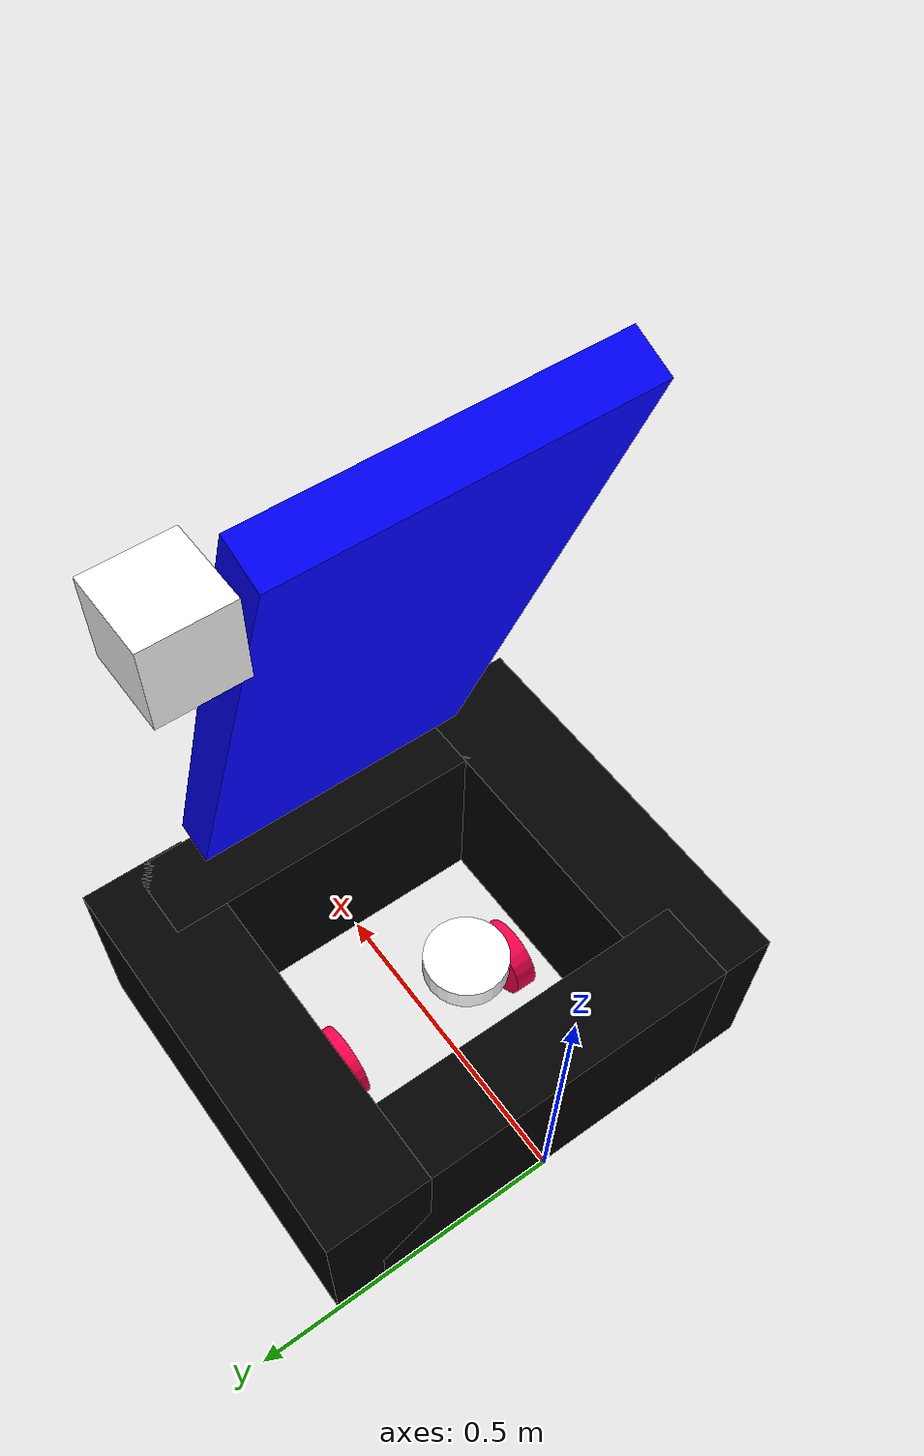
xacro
<?xml version="1.0"?>
<robot xmlns:xacro="http://www.ros.org/wiki/xacro"  name="Adrover">

    <xacro:arg name="use_ros2_control" default="true"/>

    <xacro:include filename="robot_core.xacro" />

    <xacro:if value="$(arg use_ros2_control)">
        <xacro:include filename="ros2_control.xacro" />
    </xacro:if>
    <xacro:unless value="$(arg use_ros2_control)">
        <xacro:include filename="gazebo_control.xacro" />
    </xacro:unless>

    <xacro:include filename="lidar.xacro" />
    <xacro:include filename="camera.xacro" />

</robot>

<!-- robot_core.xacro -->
<robot xmlns:xacro="http://www.ros.org/wiki/xacro" >

    <xacro:include filename="inertial_macros.xacro" />

    <material name="white">
        <color rgba="1.0 1.0 1.0 1.0"/>
    </material>

    <material name="black">
        <color rgba="0.0 0.0 0.0 1.0"/>
    </material>

    <material name="green">
        <color rgba="0.0 1.0 0.3 1.0"/>
    </material>

    <material name="blue">
        <color rgba="0.0 0.0 1.0 1.0"/>
    </material>

    <material name="red">
        <color rgba="1.0 0.0 0.3 1.0"/>
    </material>

    <!-- Base link -->

    <link name="base_link"/>

    <!-- Chassis left -->

    <joint name="chassis_joint_left" type="fixed">
        <parent link="base_link"/>
        <child link="chassis_link_left"/>
        <origin xyz="0 0.2925 0.0" rpy="0.0 0.0 0.0"/>
    </joint>

    <link name="chassis_link_left">
        <visual>
            <origin xyz="0.3125 0.0 0.154" />
            <geometry>
                <box size="0.625 0.1623 0.29"/>
            </geometry>
            <material name="black"/>
        </visual>
        <collision>
            <origin xyz="0.3125 0.0 0.154" />
            <geometry>
                <box size="0.625 0.1623 0.29"/>
            </geometry>
        </collision>
        <xacro:inertial_box mass="0.5" x="0.625" y="0.1623" z="0.29">
            <origin xyz="0.3125 0.0 0.154" rpy="0.0 0.0 0.0"/>
        </xacro:inertial_box>
    </link>
    <gazebo reference="chassis_link_left">
        <material>Gazebo/Black</material>
    </gazebo>

    <!-- Chassis right -->

    <joint name="chassis_joint_right" type="fixed">
        <parent link="base_link"/>
        <child link="chassis_link_right"/>
        <origin xyz="0 -0.2925 0.0" rpy="0.0 0.0 0.0"/>
    </joint>

    <link name="chassis_link_right">
        <visual>
            <origin xyz="0.3125 0.0 0.154" />
            <geometry>
                <box size="0.625 0.1623 0.29"/>
            </geometry>
            <material name="black"/>
        </visual>
        <collision>
            <origin xyz="0.3125 0.0 0.154" />
            <geometry>
                <box size="0.625 0.1623 0.29"/>
            </geometry>
        </collision>
        <xacro:inertial_box mass="0.5" x="0.625" y="0.1623" z="0.29">
            <origin xyz="0.3125 0.0 0.154" rpy="0.0 0.0 0.0"/>
        </xacro:inertial_box>
    </link>
    <gazebo reference="chassis_link_right">
        <material>Gazebo/Black</material>
    </gazebo>

    <!-- Chassis front -->

    <joint name="chassis_joint_front" type="fixed">
        <parent link="base_link"/>
        <child link="chassis_link_front"/>
        <origin xyz="0.56 0.0 0.0" rpy="0.0 0.0 0.0"/>
    </joint>

    <link name="chassis_link_front">
        <visual>
            <origin xyz="0 0.0 0.154" />
            <geometry>
                <box size="0.125 0.585 0.29"/>
            </geometry>
            <material name="black"/>
        </visual>
        <collision>
            <origin xyz="0 0.0 0.154" />
            <geometry>
                <box size="0.125 0.585 0.29"/>
            </geometry>
        </collision>
        <xacro:inertial_box mass="0.5" x="0.625" y="0.1623" z="0.29">
            <origin xyz="0 0.0 0.154" rpy="0.0 0.0 0.0"/>
        </xacro:inertial_box>
    </link>
    <gazebo reference="chassis_link_front">
        <material>Gazebo/Black</material>
    </gazebo>

    <!-- Chassis back -->

    <joint name="chassis_joint_back" type="fixed">
        <parent link="base_link"/>
        <child link="chassis_link_back"/>
        <origin xyz="0.0625 0.0 0.0" rpy="0.0 0.0 0.0"/>
    </joint>

    <link name="chassis_link_back">
        <visual>
            <origin xyz="0 0.0 0.154" />
            <geometry>
                <box size="0.125 0.585 0.29"/>
            </geometry>
            <material name="black"/>
        </visual>
        <collision>
            <origin xyz="0 0.0 0.154" />
            <geometry>
                <box size="0.125 0.585 0.29"/>
            </geometry>
        </collision>
        <xacro:inertial_box mass="0.5" x="0.625" y="0.1623" z="0.29">
            <origin xyz="0 0.0 0.154" rpy="0.0 0.0 0.0"/>
        </xacro:inertial_box>
    </link>
    <gazebo reference="chassis_link_back">
        <material>Gazebo/Black</material>
    </gazebo>

    <!-- Left Wheel -->

    <joint name="left_wheel_joint" type="continuous">
        <parent link="base_link"/>
        <child link="left_wheel_link"/>
        <axis xyz="0 0 1"/>
        <origin xyz="0.3125 0.1625 0" rpy="-1.5708 0 0"/>
    </joint>

    <link name="left_wheel_link">
        <visual>
            <origin xyz="0.0 0.0 0.0" rpy="0.0 0.0 0.0"/>
            <geometry>
                <cylinder radius="0.06" length="0.035"/>
            </geometry>
            <material name="red"/>
        </visual>
        <collision>
            <geometry>
                <sphere radius="0.6"/>
            </geometry>
        </collision>
        <xacro:inertial_cylinder mass="0.1" radius="0.06" length="0.035">
            <origin xyz="0.0 0.0 0.0" rpy="0.0 0.0 0.0"/>
        </xacro:inertial_cylinder>
    </link>
    <gazebo reference="left_wheel_link">
        <material>Gazebo/Red</material>
    </gazebo>

    <!-- Right wheel -->

    <joint name="right_wheel_joint" type="continuous">
        <parent link="base_link"/>
        <child link="right_wheel_link"/>
        <axis xyz="0 0 -1"/>
        <origin xyz="0.3125 -0.1625 0" rpy="1.5708 0 0"/>
    </joint>

    <link name="right_wheel_link">
        <visual>
            <origin xyz="0.0 0.0 0.0" rpy="0.0 0.0 0.0"/>
            <geometry>
                <cylinder radius="0.06" length="0.035"/>
            </geometry>
            <material name="red"/>
        </visual>
        <collision>
            <geometry>
                <sphere radius="0.6"/>
            </geometry>
        </collision>
        <xacro:inertial_cylinder mass="0.1" radius="0.06" length="0.035">
            <origin xyz="0.0 0.0 0.0" rpy="0.0 0.0 0.0"/>
        </xacro:inertial_cylinder>
    </link>
    <gazebo reference="right_wheel_link">
        <material>Gazebo/Red</material>
    </gazebo>

    <!-- Caster wheel left front -->

    <joint name="caster_wheel_joint_lf" type="fixed">
        <parent link="chassis_link_left"/>
        <child link="caster_wheel_link_lf"/>
        <origin xyz="0.565 0 0" rpy="0 0 0"/>
    </joint>

    <link name="caster_wheel_link_lf">
        <visual name="">
            <origin xyz="0.0 0.0 0.0" rpy="0.0 0.0 0.0"/>
            <geometry>
                <sphere radius="0.06"/>
            </geometry>
            <material name="green"/>
        </visual>
        <collision>
            <origin xyz="0.0 0.0 0.0" rpy="0.0 0.0 0.0"/>
            <geometry>
                <sphere radius="0.06"/>
            </geometry>
        </collision>
        <xacro:inertial_sphere mass="0.1" radius="0.06">
            <origin xyz="0.0 0.0 0.0" rpy="0.0 0.0 0.0"/>
        </xacro:inertial_sphere>
    </link>
    <gazebo reference="caster_wheel_link_lf">
        <material>Gazebo/Green</material>
        <mu1 value="0.001"/>
        <mu2 value="0.001"/>
    </gazebo>

    <!-- Caster wheel right front -->

    <joint name="caster_wheel_joint_rf" type="fixed">
        <parent link="chassis_link_right"/>
        <child link="caster_wheel_link_rf"/>
        <origin xyz="0.565 0 0" rpy="0 0 0"/>
    </joint>

    <link name="caster_wheel_link_rf">
        <visual name="">
            <origin xyz="0.0 0.0 0.0" rpy="0.0 0.0 0.0"/>
            <geometry>
                <sphere radius="0.06"/>
            </geometry>
            <material name="green"/>
        </visual>
        <collision>
            <origin xyz="0.0 0.0 0.0" rpy="0.0 0.0 0.0"/>
            <geometry>
                <sphere radius="0.06"/>
            </geometry>
        </collision>
        <xacro:inertial_sphere mass="0.1" radius="0.06">
            <origin xyz="0.0 0.0 0.0" rpy="0.0 0.0 0.0"/>
        </xacro:inertial_sphere>
    </link>
    <gazebo reference="caster_wheel_link_rf">
        <material>Gazebo/Green</material>
        <mu1 value="0.001"/>
        <mu2 value="0.001"/>
    </gazebo>

    <!-- Caster wheel left back -->

    <joint name="caster_wheel_joint_lb" type="fixed">
        <parent link="chassis_link_left"/>
        <child link="caster_wheel_link_lb"/>
        <origin xyz="0.07 0 0" rpy="0 0 0"/>
    </joint>

    <link name="caster_wheel_link_lb">
        <visual name="">
            <origin xyz="0.0 0.0 0.0" rpy="0.0 0.0 0.0"/>
            <geometry>
                <sphere radius="0.06"/>
            </geometry>
            <material name="green"/>
        </visual>
        <collision>
            <origin xyz="0.0 0.0 0.0" rpy="0.0 0.0 0.0"/>
            <geometry>
                <sphere radius="0.06"/>
            </geometry>
        </collision>
        <xacro:inertial_sphere mass="0.1" radius="0.06">
            <origin xyz="0.0 0.0 0.0" rpy="0.0 0.0 0.0"/>
        </xacro:inertial_sphere>
    </link>
    <gazebo reference="caster_wheel_link_lb">
        <material>Gazebo/Green</material>
        <mu1 value="0.001"/>
        <mu2 value="0.001"/>
    </gazebo>

    <!-- Caster wheel right back -->

    <joint name="caster_wheel_joint_rb" type="fixed">
        <parent link="chassis_link_right"/>
        <child link="caster_wheel_link_rb"/>
        <origin xyz="0.07 0 0" rpy="0 0 0"/>
    </joint>

    <link name="caster_wheel_link_rb">
        <visual name="">
            <origin xyz="0.0 0.0 0.0" rpy="0.0 0.0 0.0"/>
            <geometry>
                <sphere radius="0.06"/>
            </geometry>
            <material name="green"/>
        </visual>
        <collision>
            <origin xyz="0.0 0.0 0.0" rpy="0.0 0.0 0.0"/>
            <geometry>
                <sphere radius="0.06"/>
            </geometry>
        </collision>
        <xacro:inertial_sphere mass="0.1" radius="0.06">
            <origin xyz="0.0 0.0 0.0" rpy="0.0 0.0 0.0"/>
        </xacro:inertial_sphere>
    </link>
    <gazebo reference="caster_wheel_link_rb">
        <material>Gazebo/Green</material>
        <mu1 value="0.001"/>
        <mu2 value="0.001"/>
    </gazebo>

    <!-- LCD -->

    <joint name="lcd_joint" type="fixed">
        <origin xyz="0.0 0.0 0.36" rpy="0.0 0.0 0.0"/>
        <parent link="chassis_link_front"/>
        <child link="lcd_link"/>
    </joint>

    <link name="lcd_link">
        <visual name="">
            <origin xyz="-0.15 0.0 0.43" rpy="0.0 -0.35 0.0"/>
            <geometry>
                <box size="0.06 0.43 0.86"/>
            </geometry>
            <material name="blue" />
        </visual>
        <collision>
            <origin xyz="-0.15 0.0 0.43" rpy="0.0 -0.35 0.0"/>
            <geometry>
                <box size="0.06 0.43 0.86"/>
            </geometry>
        </collision>
        <xacro:inertial_box mass="0.5" x="0.06" y="0.43" z="0.86">
            <origin xyz="-0.15 0.0 0.43" rpy="0.0 -0.35 0.0"/>
        </xacro:inertial_box>
    </link>
    <gazebo reference="lcd_link">
        <material>Gazebo/Blue</material>
    </gazebo>
</robot>

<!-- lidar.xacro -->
<robot xmlns:xacro="http://www.ros.org/wiki/xacro">

    <joint name="laser_joint" type="fixed">
        <parent link="chassis_link_back"/>
        <child link="laser_frame"/>
        <origin xyz="0.15 0.0 0.33" rpy="0.0 0.0 0.0"/>
    </joint>

    <link name="laser_frame">
        <visual name="">
            <origin xyz="0.0 0.0 0.0" rpy="0.0 0.0 0.0"/>
            <geometry>
                <cylinder radius="0.06" length="0.035"/>
            </geometry>
            <material name="white"/>
        </visual>
    </link>

    <gazebo reference="laser_frame">
        <material>Gazebo/White</material>
        <sensor name="laser" type="ray">
            <pose> 0 0 0 0 0 0 </pose>
            <visualize>true</visualize>
            <update_rate>100</update_rate>
            <ray>
                <scan>
                    <horizontal>
                        <samples>360</samples>
                        <resolution>1</resolution>
                        <min_angle>-3.14</min_angle>
                        <max_angle>3.14</max_angle>
                    </horizontal>
                </scan>
                <range>
                    <min>0.15</min>
                    <max>12</max>
                    <resolution>0.001</resolution>
                </range>
            </ray>
            <plugin name="laser_controller" filename="libgazebo_ros_ray_sensor.so">
                <ros>
                    <argument>~/out:=scan</argument>
                </ros>
                <output_type>sensor_msgs/LaserScan</output_type>
                <frame_name>laser_frame</frame_name>
            </plugin>
        </sensor>
    </gazebo>

</robot>

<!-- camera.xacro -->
<robot xmlns:xacro="http://www.ros.org/wiki/xacro">

    <joint name="camera_joint" type="fixed">
        <parent link="lcd_link"/>
        <child link="camera_link"/>
        <origin xyz="-0.25 0.27 0.75" rpy="0.0 0 0.0"/>
    </joint>

    <link name="camera_link">
        <visual name="">
            <origin xyz="0.0 0.0 0.0" rpy="0.0 0.0 0.0"/>
            <geometry>
                <box size="0.1 0.1 0.1"/>
            </geometry>
            <material name="white"/>
        </visual>
    </link>

    <joint name="camera_joint_optical" type="fixed">
        <parent link="camera_link"/>
        <child link="camera_link_optical"/>
        <origin xyz="0 0.22 0.42" rpy="-1.5707 0 -1.5707"/>
    </joint>

    <link name="camera_link_optical" />

    <gazebo reference="camera_link">
        <material>Gazebo/White</material>
        <sensor name="camera" type="camera">
            <pose> 0 0 0 0 0 0 </pose>
            <visualize>true</visualize>
            <update_rate>10</update_rate>
            <camera>
                <horizontal_fov>1.089</horizontal_fov>
                <image>
                    <format>R8G8B8</format>
                    <width>1024</width>
                    <height>720</height>
                </image>
                <clip>
                    <near>0.05</near>
                    <far>10.0</far>
                </clip>
            </camera>
            <plugin name="camera_controller" filename="libgazebo_ros_camera.so">
                <frame_name>camera_link_optical</frame_name>
            </plugin>
        </sensor>
    </gazebo>

</robot>
